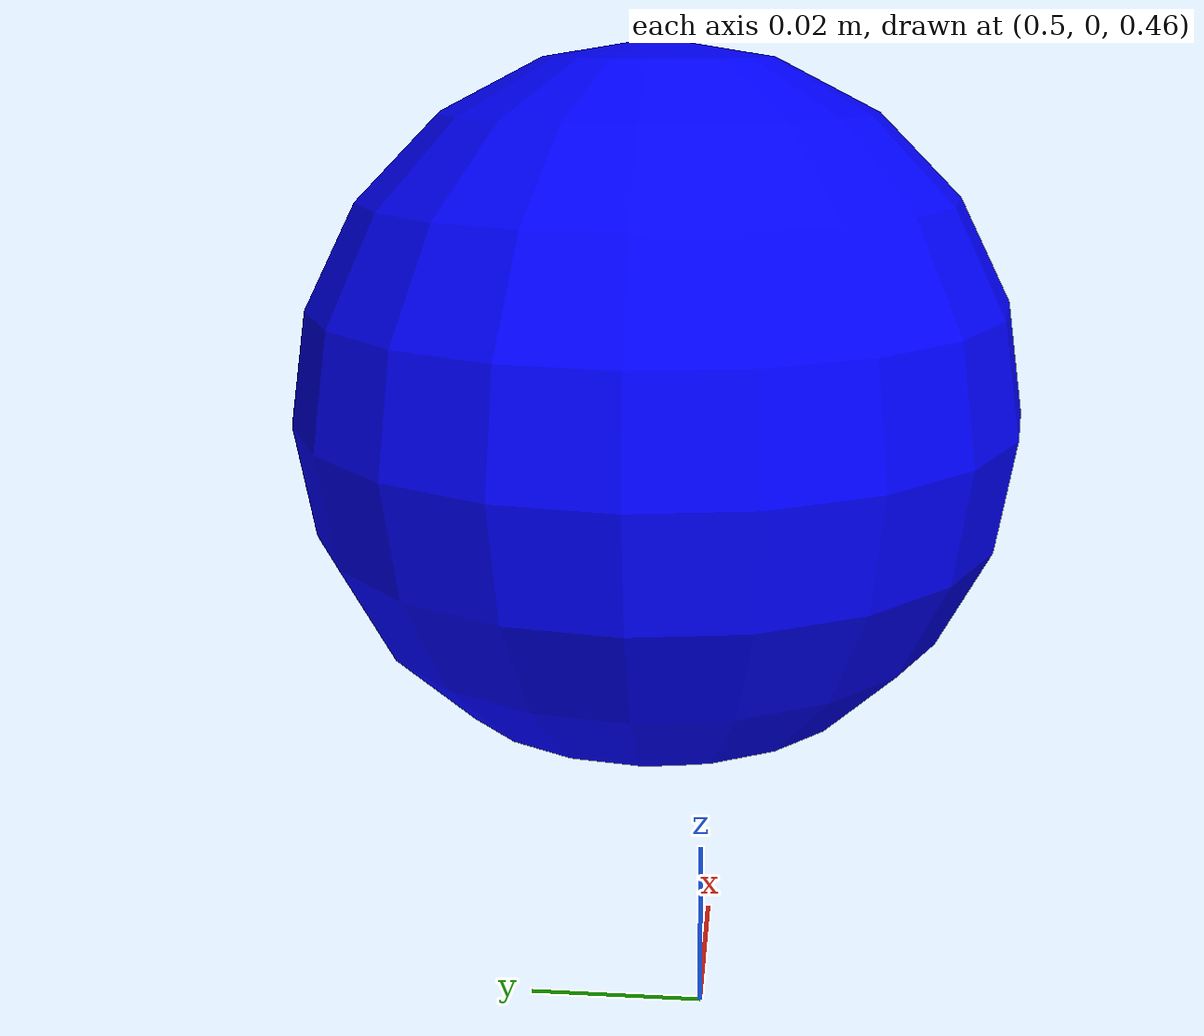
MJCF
<mujoco>
    <worldbody>

        <body name="table" pos=" 0 0 0">
           <geom type="box" pos="0.7 0 0.2" size=".4 .2 .05" rgba=".5 .5 0.7 1" mass="200" />

        </body>
            <body name="target" pos="0.55 0.009 0.52" euler="0 0 0">
            <geom type="sphere" size="0.05" mass=".01" rgba="0 0 1 1" />
            </body>

    </worldbody>
</mujoco>
